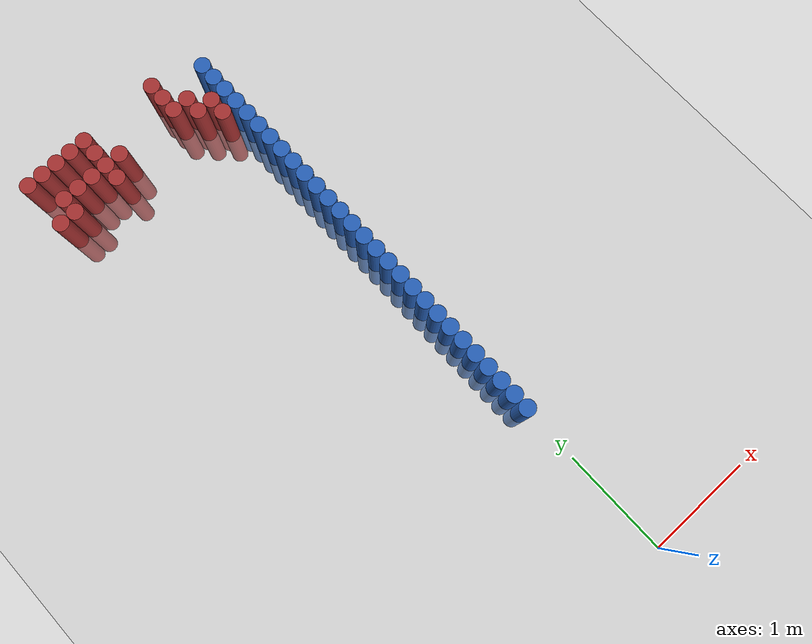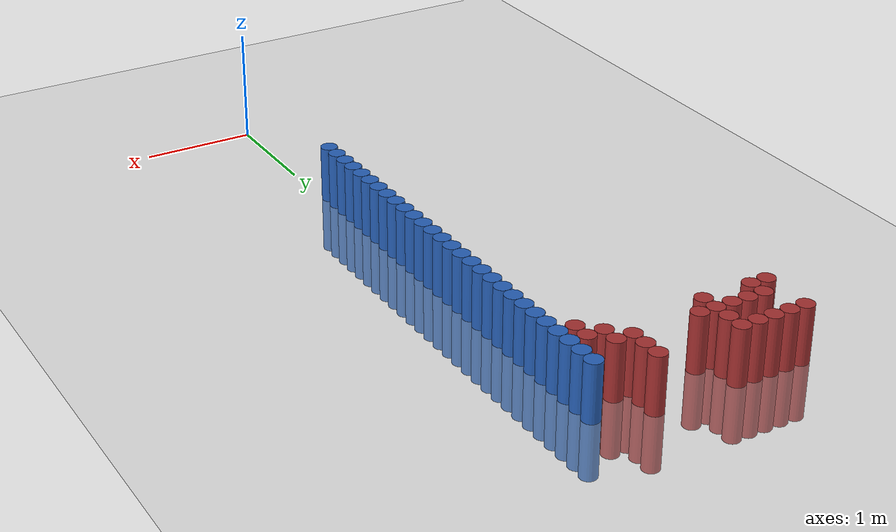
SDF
<sdf version="1.6">
 <world name="default">
  <model name="ground_plane">
   <static>1</static>
   <link name="link">
    <collision name="collision">
     <geometry><plane><normal>0 0 1</normal><size>100 100</size></plane></geometry>
     <surface><friction><ode><mu>100</mu><mu2>50</mu2></ode></friction></surface>
    </collision>
    <visual name="visual">
     <cast_shadows>0</cast_shadows>
     <geometry><plane><normal>0 0 1</normal><size>100 100</size></plane></geometry>
     <material>
      <script><uri>file://media/materials/scripts/gazebo.material</uri><name>Gazebo/Grey</name></script>
     </material>
    </visual>
   </link>
  </model>
  <model name="unit_cylinder_48">
   <static>1</static>
   <pose>-0.075000 1.575000 0.000000 0.000000 0.000000 0.000000</pose>
   <link name="link">
    <inertial>
     <mass>1</mass>
     <inertia><ixx>0.145833</ixx><ixy>0</ixy><ixz>0</ixz><iyy>0.145833</iyy><iyz>0</iyz><izz>0.125</izz></inertia>
    </inertial>
    <collision name="collision">
     <geometry><cylinder><radius>0.075000</radius><length>1</length></cylinder></geometry>
    </collision>
    <visual name="visual">
     <geometry><cylinder><radius>0.075000</radius><length>1</length></cylinder></geometry>
     <material>
      <ambient>0.152000 0.379000 0.720000 1</ambient>
      <diffuse>0.152000 0.379000 0.720000 1</diffuse>
     </material>
     <material>
      <script><name>Gazebo/Grey</name><uri>file://media/materials/scripts/gazebo.material</uri></script>
     </material>
    </visual>
   </link>
  </model>
  <model name="unit_cylinder_50">
   <static>1</static>
   <pose>-0.075000 1.725000 0.000000 0.000000 0.000000 0.000000</pose>
   <link name="link">
    <inertial>
     <mass>1</mass>
     <inertia><ixx>0.145833</ixx><ixy>0</ixy><ixz>0</ixz><iyy>0.145833</iyy><iyz>0</iyz><izz>0.125</izz></inertia>
    </inertial>
    <collision name="collision">
     <geometry><cylinder><radius>0.075000</radius><length>1</length></cylinder></geometry>
    </collision>
    <visual name="visual">
     <geometry><cylinder><radius>0.075000</radius><length>1</length></cylinder></geometry>
     <material>
      <ambient>0.152000 0.379000 0.720000 1</ambient>
      <diffuse>0.152000 0.379000 0.720000 1</diffuse>
     </material>
     <material>
      <script><name>Gazebo/Grey</name><uri>file://media/materials/scripts/gazebo.material</uri></script>
     </material>
    </visual>
   </link>
  </model>
  <model name="unit_cylinder_52">
   <static>1</static>
   <pose>-0.075000 1.875000 0.000000 0.000000 0.000000 0.000000</pose>
   <link name="link">
    <inertial>
     <mass>1</mass>
     <inertia><ixx>0.145833</ixx><ixy>0</ixy><ixz>0</ixz><iyy>0.145833</iyy><iyz>0</iyz><izz>0.125</izz></inertia>
    </inertial>
    <collision name="collision">
     <geometry><cylinder><radius>0.075000</radius><length>1</length></cylinder></geometry>
    </collision>
    <visual name="visual">
     <geometry><cylinder><radius>0.075000</radius><length>1</length></cylinder></geometry>
     <material>
      <ambient>0.152000 0.379000 0.720000 1</ambient>
      <diffuse>0.152000 0.379000 0.720000 1</diffuse>
     </material>
     <material>
      <script><name>Gazebo/Grey</name><uri>file://media/materials/scripts/gazebo.material</uri></script>
     </material>
    </visual>
   </link>
  </model>
  <model name="unit_cylinder_54">
   <static>1</static>
   <pose>-0.075000 2.025000 0.000000 0.000000 0.000000 0.000000</pose>
   <link name="link">
    <inertial>
     <mass>1</mass>
     <inertia><ixx>0.145833</ixx><ixy>0</ixy><ixz>0</ixz><iyy>0.145833</iyy><iyz>0</iyz><izz>0.125</izz></inertia>
    </inertial>
    <collision name="collision">
     <geometry><cylinder><radius>0.075000</radius><length>1</length></cylinder></geometry>
    </collision>
    <visual name="visual">
     <geometry><cylinder><radius>0.075000</radius><length>1</length></cylinder></geometry>
     <material>
      <ambient>0.152000 0.379000 0.720000 1</ambient>
      <diffuse>0.152000 0.379000 0.720000 1</diffuse>
     </material>
     <material>
      <script><name>Gazebo/Grey</name><uri>file://media/materials/scripts/gazebo.material</uri></script>
     </material>
    </visual>
   </link>
  </model>
  <model name="unit_cylinder_56">
   <static>1</static>
   <pose>-0.075000 2.175000 0.000000 0.000000 0.000000 0.000000</pose>
   <link name="link">
    <inertial>
     <mass>1</mass>
     <inertia><ixx>0.145833</ixx><ixy>0</ixy><ixz>0</ixz><iyy>0.145833</iyy><iyz>0</iyz><izz>0.125</izz></inertia>
    </inertial>
    <collision name="collision">
     <geometry><cylinder><radius>0.075000</radius><length>1</length></cylinder></geometry>
    </collision>
    <visual name="visual">
     <geometry><cylinder><radius>0.075000</radius><length>1</length></cylinder></geometry>
     <material>
      <ambient>0.152000 0.379000 0.720000 1</ambient>
      <diffuse>0.152000 0.379000 0.720000 1</diffuse>
     </material>
     <material>
      <script><name>Gazebo/Grey</name><uri>file://media/materials/scripts/gazebo.material</uri></script>
     </material>
    </visual>
   </link>
  </model>
  <model name="unit_cylinder_58">
   <static>1</static>
   <pose>-0.075000 2.325000 0.000000 0.000000 0.000000 0.000000</pose>
   <link name="link">
    <inertial>
     <mass>1</mass>
     <inertia><ixx>0.145833</ixx><ixy>0</ixy><ixz>0</ixz><iyy>0.145833</iyy><iyz>0</iyz><izz>0.125</izz></inertia>
    </inertial>
    <collision name="collision">
     <geometry><cylinder><radius>0.075000</radius><length>1</length></cylinder></geometry>
    </collision>
    <visual name="visual">
     <geometry><cylinder><radius>0.075000</radius><length>1</length></cylinder></geometry>
     <material>
      <ambient>0.152000 0.379000 0.720000 1</ambient>
      <diffuse>0.152000 0.379000 0.720000 1</diffuse>
     </material>
     <material>
      <script><name>Gazebo/Grey</name><uri>file://media/materials/scripts/gazebo.material</uri></script>
     </material>
    </visual>
   </link>
  </model>
  <model name="unit_cylinder_60">
   <static>1</static>
   <pose>-0.075000 2.475000 0.000000 0.000000 0.000000 0.000000</pose>
   <link name="link">
    <inertial>
     <mass>1</mass>
     <inertia><ixx>0.145833</ixx><ixy>0</ixy><ixz>0</ixz><iyy>0.145833</iyy><iyz>0</iyz><izz>0.125</izz></inertia>
    </inertial>
    <collision name="collision">
     <geometry><cylinder><radius>0.075000</radius><length>1</length></cylinder></geometry>
    </collision>
    <visual name="visual">
     <geometry><cylinder><radius>0.075000</radius><length>1</length></cylinder></geometry>
     <material>
      <ambient>0.152000 0.379000 0.720000 1</ambient>
      <diffuse>0.152000 0.379000 0.720000 1</diffuse>
     </material>
     <material>
      <script><name>Gazebo/Grey</name><uri>file://media/materials/scripts/gazebo.material</uri></script>
     </material>
    </visual>
   </link>
  </model>
  <model name="unit_cylinder_62">
   <static>1</static>
   <pose>-0.075000 2.625000 0.000000 0.000000 0.000000 0.000000</pose>
   <link name="link">
    <inertial>
     <mass>1</mass>
     <inertia><ixx>0.145833</ixx><ixy>0</ixy><ixz>0</ixz><iyy>0.145833</iyy><iyz>0</iyz><izz>0.125</izz></inertia>
    </inertial>
    <collision name="collision">
     <geometry><cylinder><radius>0.075000</radius><length>1</length></cylinder></geometry>
    </collision>
    <visual name="visual">
     <geometry><cylinder><radius>0.075000</radius><length>1</length></cylinder></geometry>
     <material>
      <ambient>0.152000 0.379000 0.720000 1</ambient>
      <diffuse>0.152000 0.379000 0.720000 1</diffuse>
     </material>
     <material>
      <script><name>Gazebo/Grey</name><uri>file://media/materials/scripts/gazebo.material</uri></script>
     </material>
    </visual>
   </link>
  </model>
  <model name="unit_cylinder_64">
   <static>1</static>
   <pose>-0.075000 2.775000 0.000000 0.000000 0.000000 0.000000</pose>
   <link name="link">
    <inertial>
     <mass>1</mass>
     <inertia><ixx>0.145833</ixx><ixy>0</ixy><ixz>0</ixz><iyy>0.145833</iyy><iyz>0</iyz><izz>0.125</izz></inertia>
    </inertial>
    <collision name="collision">
     <geometry><cylinder><radius>0.075000</radius><length>1</length></cylinder></geometry>
    </collision>
    <visual name="visual">
     <geometry><cylinder><radius>0.075000</radius><length>1</length></cylinder></geometry>
     <material>
      <ambient>0.152000 0.379000 0.720000 1</ambient>
      <diffuse>0.152000 0.379000 0.720000 1</diffuse>
     </material>
     <material>
      <script><name>Gazebo/Grey</name><uri>file://media/materials/scripts/gazebo.material</uri></script>
     </material>
    </visual>
   </link>
  </model>
  <model name="unit_cylinder_66">
   <static>1</static>
   <pose>-0.075000 2.925000 0.000000 0.000000 0.000000 0.000000</pose>
   <link name="link">
    <inertial>
     <mass>1</mass>
     <inertia><ixx>0.145833</ixx><ixy>0</ixy><ixz>0</ixz><iyy>0.145833</iyy><iyz>0</iyz><izz>0.125</izz></inertia>
    </inertial>
    <collision name="collision">
     <geometry><cylinder><radius>0.075000</radius><length>1</length></cylinder></geometry>
    </collision>
    <visual name="visual">
     <geometry><cylinder><radius>0.075000</radius><length>1</length></cylinder></geometry>
     <material>
      <ambient>0.152000 0.379000 0.720000 1</ambient>
      <diffuse>0.152000 0.379000 0.720000 1</diffuse>
     </material>
     <material>
      <script><name>Gazebo/Grey</name><uri>file://media/materials/scripts/gazebo.material</uri></script>
     </material>
    </visual>
   </link>
  </model>
  <model name="unit_cylinder_68">
   <static>1</static>
   <pose>-0.075000 3.075000 0.000000 0.000000 0.000000 0.000000</pose>
   <link name="link">
    <inertial>
     <mass>1</mass>
     <inertia><ixx>0.145833</ixx><ixy>0</ixy><ixz>0</ixz><iyy>0.145833</iyy><iyz>0</iyz><izz>0.125</izz></inertia>
    </inertial>
    <collision name="collision">
     <geometry><cylinder><radius>0.075000</radius><length>1</length></cylinder></geometry>
    </collision>
    <visual name="visual">
     <geometry><cylinder><radius>0.075000</radius><length>1</length></cylinder></geometry>
     <material>
      <ambient>0.152000 0.379000 0.720000 1</ambient>
      <diffuse>0.152000 0.379000 0.720000 1</diffuse>
     </material>
     <material>
      <script><name>Gazebo/Grey</name><uri>file://media/materials/scripts/gazebo.material</uri></script>
     </material>
    </visual>
   </link>
  </model>
  <model name="unit_cylinder_70">
   <static>1</static>
   <pose>-0.075000 3.225000 0.000000 0.000000 0.000000 0.000000</pose>
   <link name="link">
    <inertial>
     <mass>1</mass>
     <inertia><ixx>0.145833</ixx><ixy>0</ixy><ixz>0</ixz><iyy>0.145833</iyy><iyz>0</iyz><izz>0.125</izz></inertia>
    </inertial>
    <collision name="collision">
     <geometry><cylinder><radius>0.075000</radius><length>1</length></cylinder></geometry>
    </collision>
    <visual name="visual">
     <geometry><cylinder><radius>0.075000</radius><length>1</length></cylinder></geometry>
     <material>
      <ambient>0.152000 0.379000 0.720000 1</ambient>
      <diffuse>0.152000 0.379000 0.720000 1</diffuse>
     </material>
     <material>
      <script><name>Gazebo/Grey</name><uri>file://media/materials/scripts/gazebo.material</uri></script>
     </material>
    </visual>
   </link>
  </model>
  <model name="unit_cylinder_72">
   <static>1</static>
   <pose>-0.075000 3.375000 0.000000 0.000000 0.000000 0.000000</pose>
   <link name="link">
    <inertial>
     <mass>1</mass>
     <inertia><ixx>0.145833</ixx><ixy>0</ixy><ixz>0</ixz><iyy>0.145833</iyy><iyz>0</iyz><izz>0.125</izz></inertia>
    </inertial>
    <collision name="collision">
     <geometry><cylinder><radius>0.075000</radius><length>1</length></cylinder></geometry>
    </collision>
    <visual name="visual">
     <geometry><cylinder><radius>0.075000</radius><length>1</length></cylinder></geometry>
     <material>
      <ambient>0.152000 0.379000 0.720000 1</ambient>
      <diffuse>0.152000 0.379000 0.720000 1</diffuse>
     </material>
     <material>
      <script><name>Gazebo/Grey</name><uri>file://media/materials/scripts/gazebo.material</uri></script>
     </material>
    </visual>
   </link>
  </model>
  <model name="unit_cylinder_74">
   <static>1</static>
   <pose>-0.075000 3.525000 0.000000 0.000000 0.000000 0.000000</pose>
   <link name="link">
    <inertial>
     <mass>1</mass>
     <inertia><ixx>0.145833</ixx><ixy>0</ixy><ixz>0</ixz><iyy>0.145833</iyy><iyz>0</iyz><izz>0.125</izz></inertia>
    </inertial>
    <collision name="collision">
     <geometry><cylinder><radius>0.075000</radius><length>1</length></cylinder></geometry>
    </collision>
    <visual name="visual">
     <geometry><cylinder><radius>0.075000</radius><length>1</length></cylinder></geometry>
     <material>
      <ambient>0.152000 0.379000 0.720000 1</ambient>
      <diffuse>0.152000 0.379000 0.720000 1</diffuse>
     </material>
     <material>
      <script><name>Gazebo/Grey</name><uri>file://media/materials/scripts/gazebo.material</uri></script>
     </material>
    </visual>
   </link>
  </model>
  <model name="unit_cylinder_76">
   <static>1</static>
   <pose>-0.075000 3.675000 0.000000 0.000000 0.000000 0.000000</pose>
   <link name="link">
    <inertial>
     <mass>1</mass>
     <inertia><ixx>0.145833</ixx><ixy>0</ixy><ixz>0</ixz><iyy>0.145833</iyy><iyz>0</iyz><izz>0.125</izz></inertia>
    </inertial>
    <collision name="collision">
     <geometry><cylinder><radius>0.075000</radius><length>1</length></cylinder></geometry>
    </collision>
    <visual name="visual">
     <geometry><cylinder><radius>0.075000</radius><length>1</length></cylinder></geometry>
     <material>
      <ambient>0.152000 0.379000 0.720000 1</ambient>
      <diffuse>0.152000 0.379000 0.720000 1</diffuse>
     </material>
     <material>
      <script><name>Gazebo/Grey</name><uri>file://media/materials/scripts/gazebo.material</uri></script>
     </material>
    </visual>
   </link>
  </model>
  <model name="unit_cylinder_78">
   <static>1</static>
   <pose>-0.075000 3.825000 0.000000 0.000000 0.000000 0.000000</pose>
   <link name="link">
    <inertial>
     <mass>1</mass>
     <inertia><ixx>0.145833</ixx><ixy>0</ixy><ixz>0</ixz><iyy>0.145833</iyy><iyz>0</iyz><izz>0.125</izz></inertia>
    </inertial>
    <collision name="collision">
     <geometry><cylinder><radius>0.075000</radius><length>1</length></cylinder></geometry>
    </collision>
    <visual name="visual">
     <geometry><cylinder><radius>0.075000</radius><length>1</length></cylinder></geometry>
     <material>
      <ambient>0.152000 0.379000 0.720000 1</ambient>
      <diffuse>0.152000 0.379000 0.720000 1</diffuse>
     </material>
     <material>
      <script><name>Gazebo/Grey</name><uri>file://media/materials/scripts/gazebo.material</uri></script>
     </material>
    </visual>
   </link>
  </model>
  <model name="unit_cylinder_80">
   <static>1</static>
   <pose>-0.075000 3.975000 0.000000 0.000000 0.000000 0.000000</pose>
   <link name="link">
    <inertial>
     <mass>1</mass>
     <inertia><ixx>0.145833</ixx><ixy>0</ixy><ixz>0</ixz><iyy>0.145833</iyy><iyz>0</iyz><izz>0.125</izz></inertia>
    </inertial>
    <collision name="collision">
     <geometry><cylinder><radius>0.075000</radius><length>1</length></cylinder></geometry>
    </collision>
    <visual name="visual">
     <geometry><cylinder><radius>0.075000</radius><length>1</length></cylinder></geometry>
     <material>
      <ambient>0.152000 0.379000 0.720000 1</ambient>
      <diffuse>0.152000 0.379000 0.720000 1</diffuse>
     </material>
     <material>
      <script><name>Gazebo/Grey</name><uri>file://media/materials/scripts/gazebo.material</uri></script>
     </material>
    </visual>
   </link>
  </model>
  <model name="unit_cylinder_82">
   <static>1</static>
   <pose>-0.075000 4.125000 0.000000 0.000000 0.000000 0.000000</pose>
   <link name="link">
    <inertial>
     <mass>1</mass>
     <inertia><ixx>0.145833</ixx><ixy>0</ixy><ixz>0</ixz><iyy>0.145833</iyy><iyz>0</iyz><izz>0.125</izz></inertia>
    </inertial>
    <collision name="collision">
     <geometry><cylinder><radius>0.075000</radius><length>1</length></cylinder></geometry>
    </collision>
    <visual name="visual">
     <geometry><cylinder><radius>0.075000</radius><length>1</length></cylinder></geometry>
     <material>
      <ambient>0.152000 0.379000 0.720000 1</ambient>
      <diffuse>0.152000 0.379000 0.720000 1</diffuse>
     </material>
     <material>
      <script><name>Gazebo/Grey</name><uri>file://media/materials/scripts/gazebo.material</uri></script>
     </material>
    </visual>
   </link>
  </model>
  <model name="unit_cylinder_84">
   <static>1</static>
   <pose>-0.075000 4.275000 0.000000 0.000000 0.000000 0.000000</pose>
   <link name="link">
    <inertial>
     <mass>1</mass>
     <inertia><ixx>0.145833</ixx><ixy>0</ixy><ixz>0</ixz><iyy>0.145833</iyy><iyz>0</iyz><izz>0.125</izz></inertia>
    </inertial>
    <collision name="collision">
     <geometry><cylinder><radius>0.075000</radius><length>1</length></cylinder></geometry>
    </collision>
    <visual name="visual">
     <geometry><cylinder><radius>0.075000</radius><length>1</length></cylinder></geometry>
     <material>
      <ambient>0.152000 0.379000 0.720000 1</ambient>
      <diffuse>0.152000 0.379000 0.720000 1</diffuse>
     </material>
     <material>
      <script><name>Gazebo/Grey</name><uri>file://media/materials/scripts/gazebo.material</uri></script>
     </material>
    </visual>
   </link>
  </model>
  <model name="unit_cylinder_86">
   <static>1</static>
   <pose>-0.075000 4.425000 0.000000 0.000000 0.000000 0.000000</pose>
   <link name="link">
    <inertial>
     <mass>1</mass>
     <inertia><ixx>0.145833</ixx><ixy>0</ixy><ixz>0</ixz><iyy>0.145833</iyy><iyz>0</iyz><izz>0.125</izz></inertia>
    </inertial>
    <collision name="collision">
     <geometry><cylinder><radius>0.075000</radius><length>1</length></cylinder></geometry>
    </collision>
    <visual name="visual">
     <geometry><cylinder><radius>0.075000</radius><length>1</length></cylinder></geometry>
     <material>
      <ambient>0.152000 0.379000 0.720000 1</ambient>
      <diffuse>0.152000 0.379000 0.720000 1</diffuse>
     </material>
     <material>
      <script><name>Gazebo/Grey</name><uri>file://media/materials/scripts/gazebo.material</uri></script>
     </material>
    </visual>
   </link>
  </model>
  <model name="unit_cylinder_88">
   <static>1</static>
   <pose>-0.075000 4.575000 0.000000 0.000000 0.000000 0.000000</pose>
   <link name="link">
    <inertial>
     <mass>1</mass>
     <inertia><ixx>0.145833</ixx><ixy>0</ixy><ixz>0</ixz><iyy>0.145833</iyy><iyz>0</iyz><izz>0.125</izz></inertia>
    </inertial>
    <collision name="collision">
     <geometry><cylinder><radius>0.075000</radius><length>1</length></cylinder></geometry>
    </collision>
    <visual name="visual">
     <geometry><cylinder><radius>0.075000</radius><length>1</length></cylinder></geometry>
     <material>
      <ambient>0.152000 0.379000 0.720000 1</ambient>
      <diffuse>0.152000 0.379000 0.720000 1</diffuse>
     </material>
     <material>
      <script><name>Gazebo/Grey</name><uri>file://media/materials/scripts/gazebo.material</uri></script>
     </material>
    </visual>
   </link>
  </model>
  <model name="unit_cylinder_90">
   <static>1</static>
   <pose>-0.075000 4.725000 0.000000 0.000000 0.000000 0.000000</pose>
   <link name="link">
    <inertial>
     <mass>1</mass>
     <inertia><ixx>0.145833</ixx><ixy>0</ixy><ixz>0</ixz><iyy>0.145833</iyy><iyz>0</iyz><izz>0.125</izz></inertia>
    </inertial>
    <collision name="collision">
     <geometry><cylinder><radius>0.075000</radius><length>1</length></cylinder></geometry>
    </collision>
    <visual name="visual">
     <geometry><cylinder><radius>0.075000</radius><length>1</length></cylinder></geometry>
     <material>
      <ambient>0.152000 0.379000 0.720000 1</ambient>
      <diffuse>0.152000 0.379000 0.720000 1</diffuse>
     </material>
     <material>
      <script><name>Gazebo/Grey</name><uri>file://media/materials/scripts/gazebo.material</uri></script>
     </material>
    </visual>
   </link>
  </model>
  <model name="unit_cylinder_92">
   <static>1</static>
   <pose>-0.075000 4.875000 0.000000 0.000000 0.000000 0.000000</pose>
   <link name="link">
    <inertial>
     <mass>1</mass>
     <inertia><ixx>0.145833</ixx><ixy>0</ixy><ixz>0</ixz><iyy>0.145833</iyy><iyz>0</iyz><izz>0.125</izz></inertia>
    </inertial>
    <collision name="collision">
     <geometry><cylinder><radius>0.075000</radius><length>1</length></cylinder></geometry>
    </collision>
    <visual name="visual">
     <geometry><cylinder><radius>0.075000</radius><length>1</length></cylinder></geometry>
     <material>
      <ambient>0.152000 0.379000 0.720000 1</ambient>
      <diffuse>0.152000 0.379000 0.720000 1</diffuse>
     </material>
     <material>
      <script><name>Gazebo/Grey</name><uri>file://media/materials/scripts/gazebo.material</uri></script>
     </material>
    </visual>
   </link>
  </model>
  <model name="unit_cylinder_94">
   <static>1</static>
   <pose>-0.075000 5.025000 0.000000 0.000000 0.000000 0.000000</pose>
   <link name="link">
    <inertial>
     <mass>1</mass>
     <inertia><ixx>0.145833</ixx><ixy>0</ixy><ixz>0</ixz><iyy>0.145833</iyy><iyz>0</iyz><izz>0.125</izz></inertia>
    </inertial>
    <collision name="collision">
     <geometry><cylinder><radius>0.075000</radius><length>1</length></cylinder></geometry>
    </collision>
    <visual name="visual">
     <geometry><cylinder><radius>0.075000</radius><length>1</length></cylinder></geometry>
     <material>
      <ambient>0.152000 0.379000 0.720000 1</ambient>
      <diffuse>0.152000 0.379000 0.720000 1</diffuse>
     </material>
     <material>
      <script><name>Gazebo/Grey</name><uri>file://media/materials/scripts/gazebo.material</uri></script>
     </material>
    </visual>
   </link>
  </model>
  <model name="unit_cylinder_202">
   <static>1</static>
   <pose>-1.875000 5.325000 0.000000 0.000000 0.000000 0.000000</pose>
   <link name="link">
    <inertial>
     <mass>1</mass>
     <inertia><ixx>0.145833</ixx><ixy>0</ixy><ixz>0</ixz><iyy>0.145833</iyy><iyz>0</iyz><izz>0.125</izz></inertia>
    </inertial>
    <collision name="collision">
     <geometry><cylinder><radius>0.075000</radius><length>1</length></cylinder></geometry>
    </collision>
    <visual name="visual">
     <geometry><cylinder><radius>0.075000</radius><length>1</length></cylinder></geometry>
     <material>
      <ambient>0.648000 0.192000 0.192000 1</ambient>
      <diffuse>0.648000 0.192000 0.192000 1</diffuse>
     </material>
     <material>
      <script><name>Gazebo/Grey</name><uri>file://media/materials/scripts/gazebo.material</uri></script>
     </material>
    </visual>
   </link>
  </model>
  <model name="unit_cylinder_203">
   <static>1</static>
   <pose>-1.875000 5.775000 0.000000 0.000000 0.000000 0.000000</pose>
   <link name="link">
    <inertial>
     <mass>1</mass>
     <inertia><ixx>0.145833</ixx><ixy>0</ixy><ixz>0</ixz><iyy>0.145833</iyy><iyz>0</iyz><izz>0.125</izz></inertia>
    </inertial>
    <collision name="collision">
     <geometry><cylinder><radius>0.075000</radius><length>1</length></cylinder></geometry>
    </collision>
    <visual name="visual">
     <geometry><cylinder><radius>0.075000</radius><length>1</length></cylinder></geometry>
     <material>
      <ambient>0.648000 0.192000 0.192000 1</ambient>
      <diffuse>0.648000 0.192000 0.192000 1</diffuse>
     </material>
     <material>
      <script><name>Gazebo/Grey</name><uri>file://media/materials/scripts/gazebo.material</uri></script>
     </material>
    </visual>
   </link>
  </model>
  <model name="unit_cylinder_209">
   <static>1</static>
   <pose>-1.725000 5.325000 0.000000 0.000000 0.000000 0.000000</pose>
   <link name="link">
    <inertial>
     <mass>1</mass>
     <inertia><ixx>0.145833</ixx><ixy>0</ixy><ixz>0</ixz><iyy>0.145833</iyy><iyz>0</iyz><izz>0.125</izz></inertia>
    </inertial>
    <collision name="collision">
     <geometry><cylinder><radius>0.075000</radius><length>1</length></cylinder></geometry>
    </collision>
    <visual name="visual">
     <geometry><cylinder><radius>0.075000</radius><length>1</length></cylinder></geometry>
     <material>
      <ambient>0.648000 0.192000 0.192000 1</ambient>
      <diffuse>0.648000 0.192000 0.192000 1</diffuse>
     </material>
     <material>
      <script><name>Gazebo/Grey</name><uri>file://media/materials/scripts/gazebo.material</uri></script>
     </material>
    </visual>
   </link>
  </model>
  <model name="unit_cylinder_210">
   <static>1</static>
   <pose>-1.725000 5.475000 0.000000 0.000000 0.000000 0.000000</pose>
   <link name="link">
    <inertial>
     <mass>1</mass>
     <inertia><ixx>0.145833</ixx><ixy>0</ixy><ixz>0</ixz><iyy>0.145833</iyy><iyz>0</iyz><izz>0.125</izz></inertia>
    </inertial>
    <collision name="collision">
     <geometry><cylinder><radius>0.075000</radius><length>1</length></cylinder></geometry>
    </collision>
    <visual name="visual">
     <geometry><cylinder><radius>0.075000</radius><length>1</length></cylinder></geometry>
     <material>
      <ambient>0.648000 0.192000 0.192000 1</ambient>
      <diffuse>0.648000 0.192000 0.192000 1</diffuse>
     </material>
     <material>
      <script><name>Gazebo/Grey</name><uri>file://media/materials/scripts/gazebo.material</uri></script>
     </material>
    </visual>
   </link>
  </model>
  <model name="unit_cylinder_211">
   <static>1</static>
   <pose>-1.725000 5.775000 0.000000 0.000000 0.000000 0.000000</pose>
   <link name="link">
    <inertial>
     <mass>1</mass>
     <inertia><ixx>0.145833</ixx><ixy>0</ixy><ixz>0</ixz><iyy>0.145833</iyy><iyz>0</iyz><izz>0.125</izz></inertia>
    </inertial>
    <collision name="collision">
     <geometry><cylinder><radius>0.075000</radius><length>1</length></cylinder></geometry>
    </collision>
    <visual name="visual">
     <geometry><cylinder><radius>0.075000</radius><length>1</length></cylinder></geometry>
     <material>
      <ambient>0.648000 0.192000 0.192000 1</ambient>
      <diffuse>0.648000 0.192000 0.192000 1</diffuse>
     </material>
     <material>
      <script><name>Gazebo/Grey</name><uri>file://media/materials/scripts/gazebo.material</uri></script>
     </material>
    </visual>
   </link>
  </model>
  <model name="unit_cylinder_216">
   <static>1</static>
   <pose>-1.575000 5.475000 0.000000 0.000000 0.000000 0.000000</pose>
   <link name="link">
    <inertial>
     <mass>1</mass>
     <inertia><ixx>0.145833</ixx><ixy>0</ixy><ixz>0</ixz><iyy>0.145833</iyy><iyz>0</iyz><izz>0.125</izz></inertia>
    </inertial>
    <collision name="collision">
     <geometry><cylinder><radius>0.075000</radius><length>1</length></cylinder></geometry>
    </collision>
    <visual name="visual">
     <geometry><cylinder><radius>0.075000</radius><length>1</length></cylinder></geometry>
     <material>
      <ambient>0.648000 0.192000 0.192000 1</ambient>
      <diffuse>0.648000 0.192000 0.192000 1</diffuse>
     </material>
     <material>
      <script><name>Gazebo/Grey</name><uri>file://media/materials/scripts/gazebo.material</uri></script>
     </material>
    </visual>
   </link>
  </model>
  <model name="unit_cylinder_217">
   <static>1</static>
   <pose>-1.575000 5.775000 0.000000 0.000000 0.000000 0.000000</pose>
   <link name="link">
    <inertial>
     <mass>1</mass>
     <inertia><ixx>0.145833</ixx><ixy>0</ixy><ixz>0</ixz><iyy>0.145833</iyy><iyz>0</iyz><izz>0.125</izz></inertia>
    </inertial>
    <collision name="collision">
     <geometry><cylinder><radius>0.075000</radius><length>1</length></cylinder></geometry>
    </collision>
    <visual name="visual">
     <geometry><cylinder><radius>0.075000</radius><length>1</length></cylinder></geometry>
     <material>
      <ambient>0.648000 0.192000 0.192000 1</ambient>
      <diffuse>0.648000 0.192000 0.192000 1</diffuse>
     </material>
     <material>
      <script><name>Gazebo/Grey</name><uri>file://media/materials/scripts/gazebo.material</uri></script>
     </material>
    </visual>
   </link>
  </model>
  <model name="unit_cylinder_226">
   <static>1</static>
   <pose>-1.425000 5.475000 0.000000 0.000000 0.000000 0.000000</pose>
   <link name="link">
    <inertial>
     <mass>1</mass>
     <inertia><ixx>0.145833</ixx><ixy>0</ixy><ixz>0</ixz><iyy>0.145833</iyy><iyz>0</iyz><izz>0.125</izz></inertia>
    </inertial>
    <collision name="collision">
     <geometry><cylinder><radius>0.075000</radius><length>1</length></cylinder></geometry>
    </collision>
    <visual name="visual">
     <geometry><cylinder><radius>0.075000</radius><length>1</length></cylinder></geometry>
     <material>
      <ambient>0.648000 0.192000 0.192000 1</ambient>
      <diffuse>0.648000 0.192000 0.192000 1</diffuse>
     </material>
     <material>
      <script><name>Gazebo/Grey</name><uri>file://media/materials/scripts/gazebo.material</uri></script>
     </material>
    </visual>
   </link>
  </model>
  <model name="unit_cylinder_227">
   <static>1</static>
   <pose>-1.425000 5.775000 0.000000 0.000000 0.000000 0.000000</pose>
   <link name="link">
    <inertial>
     <mass>1</mass>
     <inertia><ixx>0.145833</ixx><ixy>0</ixy><ixz>0</ixz><iyy>0.145833</iyy><iyz>0</iyz><izz>0.125</izz></inertia>
    </inertial>
    <collision name="collision">
     <geometry><cylinder><radius>0.075000</radius><length>1</length></cylinder></geometry>
    </collision>
    <visual name="visual">
     <geometry><cylinder><radius>0.075000</radius><length>1</length></cylinder></geometry>
     <material>
      <ambient>0.648000 0.192000 0.192000 1</ambient>
      <diffuse>0.648000 0.192000 0.192000 1</diffuse>
     </material>
     <material>
      <script><name>Gazebo/Grey</name><uri>file://media/materials/scripts/gazebo.material</uri></script>
     </material>
    </visual>
   </link>
  </model>
  <model name="unit_cylinder_241">
   <static>1</static>
   <pose>-1.275000 5.325000 0.000000 0.000000 0.000000 0.000000</pose>
   <link name="link">
    <inertial>
     <mass>1</mass>
     <inertia><ixx>0.145833</ixx><ixy>0</ixy><ixz>0</ixz><iyy>0.145833</iyy><iyz>0</iyz><izz>0.125</izz></inertia>
    </inertial>
    <collision name="collision">
     <geometry><cylinder><radius>0.075000</radius><length>1</length></cylinder></geometry>
    </collision>
    <visual name="visual">
     <geometry><cylinder><radius>0.075000</radius><length>1</length></cylinder></geometry>
     <material>
      <ambient>0.648000 0.192000 0.192000 1</ambient>
      <diffuse>0.648000 0.192000 0.192000 1</diffuse>
     </material>
     <material>
      <script><name>Gazebo/Grey</name><uri>file://media/materials/scripts/gazebo.material</uri></script>
     </material>
    </visual>
   </link>
  </model>
  <model name="unit_cylinder_242">
   <static>1</static>
   <pose>-1.275000 5.475000 0.000000 0.000000 0.000000 0.000000</pose>
   <link name="link">
    <inertial>
     <mass>1</mass>
     <inertia><ixx>0.145833</ixx><ixy>0</ixy><ixz>0</ixz><iyy>0.145833</iyy><iyz>0</iyz><izz>0.125</izz></inertia>
    </inertial>
    <collision name="collision">
     <geometry><cylinder><radius>0.075000</radius><length>1</length></cylinder></geometry>
    </collision>
    <visual name="visual">
     <geometry><cylinder><radius>0.075000</radius><length>1</length></cylinder></geometry>
     <material>
      <ambient>0.648000 0.192000 0.192000 1</ambient>
      <diffuse>0.648000 0.192000 0.192000 1</diffuse>
     </material>
     <material>
      <script><name>Gazebo/Grey</name><uri>file://media/materials/scripts/gazebo.material</uri></script>
     </material>
    </visual>
   </link>
  </model>
  <model name="unit_cylinder_243">
   <static>1</static>
   <pose>-1.275000 5.625000 0.000000 0.000000 0.000000 0.000000</pose>
   <link name="link">
    <inertial>
     <mass>1</mass>
     <inertia><ixx>0.145833</ixx><ixy>0</ixy><ixz>0</ixz><iyy>0.145833</iyy><iyz>0</iyz><izz>0.125</izz></inertia>
    </inertial>
    <collision name="collision">
     <geometry><cylinder><radius>0.075000</radius><length>1</length></cylinder></geometry>
    </collision>
    <visual name="visual">
     <geometry><cylinder><radius>0.075000</radius><length>1</length></cylinder></geometry>
     <material>
      <ambient>0.648000 0.192000 0.192000 1</ambient>
      <diffuse>0.648000 0.192000 0.192000 1</diffuse>
     </material>
     <material>
      <script><name>Gazebo/Grey</name><uri>file://media/materials/scripts/gazebo.material</uri></script>
     </material>
    </visual>
   </link>
  </model>
  <model name="unit_cylinder_244">
   <static>1</static>
   <pose>-1.275000 5.775000 0.000000 0.000000 0.000000 0.000000</pose>
   <link name="link">
    <inertial>
     <mass>1</mass>
     <inertia><ixx>0.145833</ixx><ixy>0</ixy><ixz>0</ixz><iyy>0.145833</iyy><iyz>0</iyz><izz>0.125</izz></inertia>
    </inertial>
    <collision name="collision">
     <geometry><cylinder><radius>0.075000</radius><length>1</length></cylinder></geometry>
    </collision>
    <visual name="visual">
     <geometry><cylinder><radius>0.075000</radius><length>1</length></cylinder></geometry>
     <material>
      <ambient>0.648000 0.192000 0.192000 1</ambient>
      <diffuse>0.648000 0.192000 0.192000 1</diffuse>
     </material>
     <material>
      <script><name>Gazebo/Grey</name><uri>file://media/materials/scripts/gazebo.material</uri></script>
     </material>
    </visual>
   </link>
  </model>
  <model name="unit_cylinder_259">
   <static>1</static>
   <pose>-1.125000 5.475000 0.000000 0.000000 0.000000 0.000000</pose>
   <link name="link">
    <inertial>
     <mass>1</mass>
     <inertia><ixx>0.145833</ixx><ixy>0</ixy><ixz>0</ixz><iyy>0.145833</iyy><iyz>0</iyz><izz>0.125</izz></inertia>
    </inertial>
    <collision name="collision">
     <geometry><cylinder><radius>0.075000</radius><length>1</length></cylinder></geometry>
    </collision>
    <visual name="visual">
     <geometry><cylinder><radius>0.075000</radius><length>1</length></cylinder></geometry>
     <material>
      <ambient>0.648000 0.192000 0.192000 1</ambient>
      <diffuse>0.648000 0.192000 0.192000 1</diffuse>
     </material>
     <material>
      <script><name>Gazebo/Grey</name><uri>file://media/materials/scripts/gazebo.material</uri></script>
     </material>
    </visual>
   </link>
  </model>
  <model name="unit_cylinder_277">
   <static>1</static>
   <pose>-0.525000 5.475000 0.000000 0.000000 0.000000 0.000000</pose>
   <link name="link">
    <inertial>
     <mass>1</mass>
     <inertia><ixx>0.145833</ixx><ixy>0</ixy><ixz>0</ixz><iyy>0.145833</iyy><iyz>0</iyz><izz>0.125</izz></inertia>
    </inertial>
    <collision name="collision">
     <geometry><cylinder><radius>0.075000</radius><length>1</length></cylinder></geometry>
    </collision>
    <visual name="visual">
     <geometry><cylinder><radius>0.075000</radius><length>1</length></cylinder></geometry>
     <material>
      <ambient>0.648000 0.192000 0.192000 1</ambient>
      <diffuse>0.648000 0.192000 0.192000 1</diffuse>
     </material>
     <material>
      <script><name>Gazebo/Grey</name><uri>file://media/materials/scripts/gazebo.material</uri></script>
     </material>
    </visual>
   </link>
  </model>
  <model name="unit_cylinder_278">
   <static>1</static>
   <pose>-0.525000 5.625000 0.000000 0.000000 0.000000 0.000000</pose>
   <link name="link">
    <inertial>
     <mass>1</mass>
     <inertia><ixx>0.145833</ixx><ixy>0</ixy><ixz>0</ixz><iyy>0.145833</iyy><iyz>0</iyz><izz>0.125</izz></inertia>
    </inertial>
    <collision name="collision">
     <geometry><cylinder><radius>0.075000</radius><length>1</length></cylinder></geometry>
    </collision>
    <visual name="visual">
     <geometry><cylinder><radius>0.075000</radius><length>1</length></cylinder></geometry>
     <material>
      <ambient>0.648000 0.192000 0.192000 1</ambient>
      <diffuse>0.648000 0.192000 0.192000 1</diffuse>
     </material>
     <material>
      <script><name>Gazebo/Grey</name><uri>file://media/materials/scripts/gazebo.material</uri></script>
     </material>
    </visual>
   </link>
  </model>
  <model name="unit_cylinder_279">
   <static>1</static>
   <pose>-0.525000 5.775000 0.000000 0.000000 0.000000 0.000000</pose>
   <link name="link">
    <inertial>
     <mass>1</mass>
     <inertia><ixx>0.145833</ixx><ixy>0</ixy><ixz>0</ixz><iyy>0.145833</iyy><iyz>0</iyz><izz>0.125</izz></inertia>
    </inertial>
    <collision name="collision">
     <geometry><cylinder><radius>0.075000</radius><length>1</length></cylinder></geometry>
    </collision>
    <visual name="visual">
     <geometry><cylinder><radius>0.075000</radius><length>1</length></cylinder></geometry>
     <material>
      <ambient>0.648000 0.192000 0.192000 1</ambient>
      <diffuse>0.648000 0.192000 0.192000 1</diffuse>
     </material>
     <material>
      <script><name>Gazebo/Grey</name><uri>file://media/materials/scripts/gazebo.material</uri></script>
     </material>
    </visual>
   </link>
  </model>
  <model name="unit_cylinder_283">
   <static>1</static>
   <pose>-0.375000 5.325000 0.000000 0.000000 0.000000 0.000000</pose>
   <link name="link">
    <inertial>
     <mass>1</mass>
     <inertia><ixx>0.145833</ixx><ixy>0</ixy><ixz>0</ixz><iyy>0.145833</iyy><iyz>0</iyz><izz>0.125</izz></inertia>
    </inertial>
    <collision name="collision">
     <geometry><cylinder><radius>0.075000</radius><length>1</length></cylinder></geometry>
    </collision>
    <visual name="visual">
     <geometry><cylinder><radius>0.075000</radius><length>1</length></cylinder></geometry>
     <material>
      <ambient>0.648000 0.192000 0.192000 1</ambient>
      <diffuse>0.648000 0.192000 0.192000 1</diffuse>
     </material>
     <material>
      <script><name>Gazebo/Grey</name><uri>file://media/materials/scripts/gazebo.material</uri></script>
     </material>
    </visual>
   </link>
  </model>
  <model name="unit_cylinder_284">
   <static>1</static>
   <pose>-0.375000 5.475000 0.000000 0.000000 0.000000 0.000000</pose>
   <link name="link">
    <inertial>
     <mass>1</mass>
     <inertia><ixx>0.145833</ixx><ixy>0</ixy><ixz>0</ixz><iyy>0.145833</iyy><iyz>0</iyz><izz>0.125</izz></inertia>
    </inertial>
    <collision name="collision">
     <geometry><cylinder><radius>0.075000</radius><length>1</length></cylinder></geometry>
    </collision>
    <visual name="visual">
     <geometry><cylinder><radius>0.075000</radius><length>1</length></cylinder></geometry>
     <material>
      <ambient>0.648000 0.192000 0.192000 1</ambient>
      <diffuse>0.648000 0.192000 0.192000 1</diffuse>
     </material>
     <material>
      <script><name>Gazebo/Grey</name><uri>file://media/materials/scripts/gazebo.material</uri></script>
     </material>
    </visual>
   </link>
  </model>
  <model name="unit_cylinder_292">
   <static>1</static>
   <pose>-0.225000 5.175000 0.000000 0.000000 0.000000 0.000000</pose>
   <link name="link">
    <inertial>
     <mass>1</mass>
     <inertia><ixx>0.145833</ixx><ixy>0</ixy><ixz>0</ixz><iyy>0.145833</iyy><iyz>0</iyz><izz>0.125</izz></inertia>
    </inertial>
    <collision name="collision">
     <geometry><cylinder><radius>0.075000</radius><length>1</length></cylinder></geometry>
    </collision>
    <visual name="visual">
     <geometry><cylinder><radius>0.075000</radius><length>1</length></cylinder></geometry>
     <material>
      <ambient>0.648000 0.192000 0.192000 1</ambient>
      <diffuse>0.648000 0.192000 0.192000 1</diffuse>
     </material>
     <material>
      <script><name>Gazebo/Grey</name><uri>file://media/materials/scripts/gazebo.material</uri></script>
     </material>
    </visual>
   </link>
  </model>
  <model name="unit_cylinder_293">
   <static>1</static>
   <pose>-0.225000 5.325000 0.000000 0.000000 0.000000 0.000000</pose>
   <link name="link">
    <inertial>
     <mass>1</mass>
     <inertia><ixx>0.145833</ixx><ixy>0</ixy><ixz>0</ixz><iyy>0.145833</iyy><iyz>0</iyz><izz>0.125</izz></inertia>
    </inertial>
    <collision name="collision">
     <geometry><cylinder><radius>0.075000</radius><length>1</length></cylinder></geometry>
    </collision>
    <visual name="visual">
     <geometry><cylinder><radius>0.075000</radius><length>1</length></cylinder></geometry>
     <material>
      <ambient>0.648000 0.192000 0.192000 1</ambient>
      <diffuse>0.648000 0.192000 0.192000 1</diffuse>
     </material>
     <material>
      <script><name>Gazebo/Grey</name><uri>file://media/materials/scripts/gazebo.material</uri></script>
     </material>
    </visual>
   </link>
  </model>
  <model name="unit_cylinder_315">
   <static>1</static>
   <pose>-0.075000 5.175000 0.000000 0.000000 0.000000 0.000000</pose>
   <link name="link">
    <inertial>
     <mass>1</mass>
     <inertia><ixx>0.145833</ixx><ixy>0</ixy><ixz>0</ixz><iyy>0.145833</iyy><iyz>0</iyz><izz>0.125</izz></inertia>
    </inertial>
    <collision name="collision">
     <geometry><cylinder><radius>0.075000</radius><length>1</length></cylinder></geometry>
    </collision>
    <visual name="visual">
     <geometry><cylinder><radius>0.075000</radius><length>1</length></cylinder></geometry>
     <material>
      <ambient>0.152000 0.379000 0.720000 1</ambient>
      <diffuse>0.152000 0.379000 0.720000 1</diffuse>
     </material>
     <material>
      <script><name>Gazebo/Grey</name><uri>file://media/materials/scripts/gazebo.material</uri></script>
     </material>
    </visual>
   </link>
  </model>
  <model name="unit_cylinder_316">
   <static>1</static>
   <pose>-0.075000 5.325000 0.000000 0.000000 0.000000 0.000000</pose>
   <link name="link">
    <inertial>
     <mass>1</mass>
     <inertia><ixx>0.145833</ixx><ixy>0</ixy><ixz>0</ixz><iyy>0.145833</iyy><iyz>0</iyz><izz>0.125</izz></inertia>
    </inertial>
    <collision name="collision">
     <geometry><cylinder><radius>0.075000</radius><length>1</length></cylinder></geometry>
    </collision>
    <visual name="visual">
     <geometry><cylinder><radius>0.075000</radius><length>1</length></cylinder></geometry>
     <material>
      <ambient>0.152000 0.379000 0.720000 1</ambient>
      <diffuse>0.152000 0.379000 0.720000 1</diffuse>
     </material>
     <material>
      <script><name>Gazebo/Grey</name><uri>file://media/materials/scripts/gazebo.material</uri></script>
     </material>
    </visual>
   </link>
  </model>
  <model name="unit_cylinder_317">
   <static>1</static>
   <pose>-0.075000 5.475000 0.000000 0.000000 0.000000 0.000000</pose>
   <link name="link">
    <inertial>
     <mass>1</mass>
     <inertia><ixx>0.145833</ixx><ixy>0</ixy><ixz>0</ixz><iyy>0.145833</iyy><iyz>0</iyz><izz>0.125</izz></inertia>
    </inertial>
    <collision name="collision">
     <geometry><cylinder><radius>0.075000</radius><length>1</length></cylinder></geometry>
    </collision>
    <visual name="visual">
     <geometry><cylinder><radius>0.075000</radius><length>1</length></cylinder></geometry>
     <material>
      <ambient>0.152000 0.379000 0.720000 1</ambient>
      <diffuse>0.152000 0.379000 0.720000 1</diffuse>
     </material>
     <material>
      <script><name>Gazebo/Grey</name><uri>file://media/materials/scripts/gazebo.material</uri></script>
     </material>
    </visual>
   </link>
  </model>
  <model name="unit_cylinder_318">
   <static>1</static>
   <pose>-0.075000 5.625000 0.000000 0.000000 0.000000 0.000000</pose>
   <link name="link">
    <inertial>
     <mass>1</mass>
     <inertia><ixx>0.145833</ixx><ixy>0</ixy><ixz>0</ixz><iyy>0.145833</iyy><iyz>0</iyz><izz>0.125</izz></inertia>
    </inertial>
    <collision name="collision">
     <geometry><cylinder><radius>0.075000</radius><length>1</length></cylinder></geometry>
    </collision>
    <visual name="visual">
     <geometry><cylinder><radius>0.075000</radius><length>1</length></cylinder></geometry>
     <material>
      <ambient>0.152000 0.379000 0.720000 1</ambient>
      <diffuse>0.152000 0.379000 0.720000 1</diffuse>
     </material>
     <material>
      <script><name>Gazebo/Grey</name><uri>file://media/materials/scripts/gazebo.material</uri></script>
     </material>
    </visual>
   </link>
  </model>
 </world>
</sdf>
